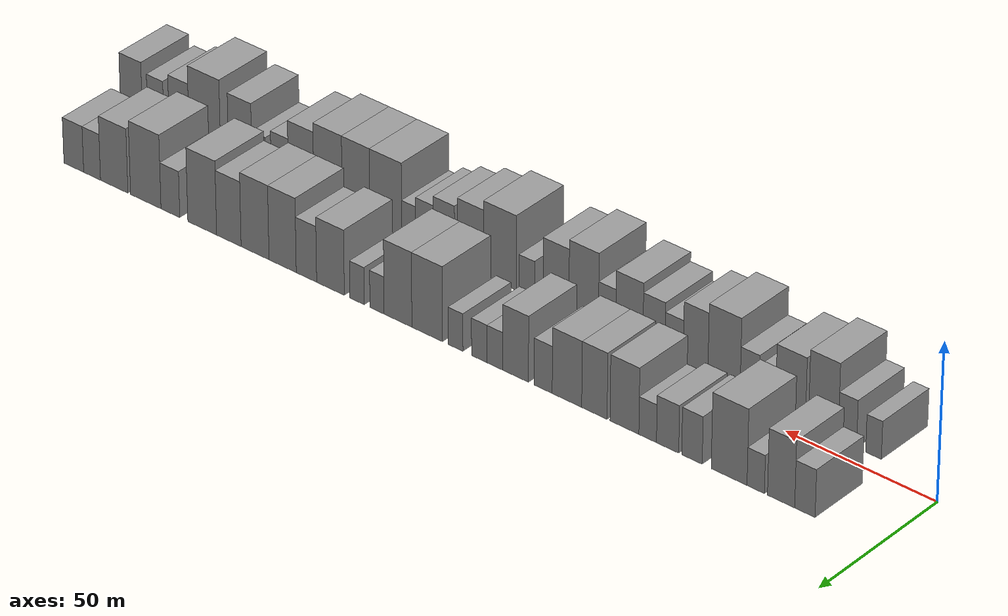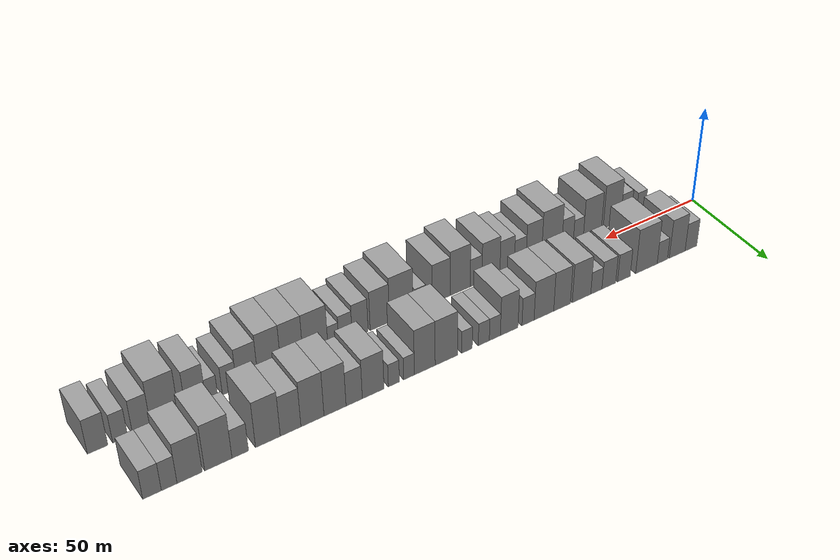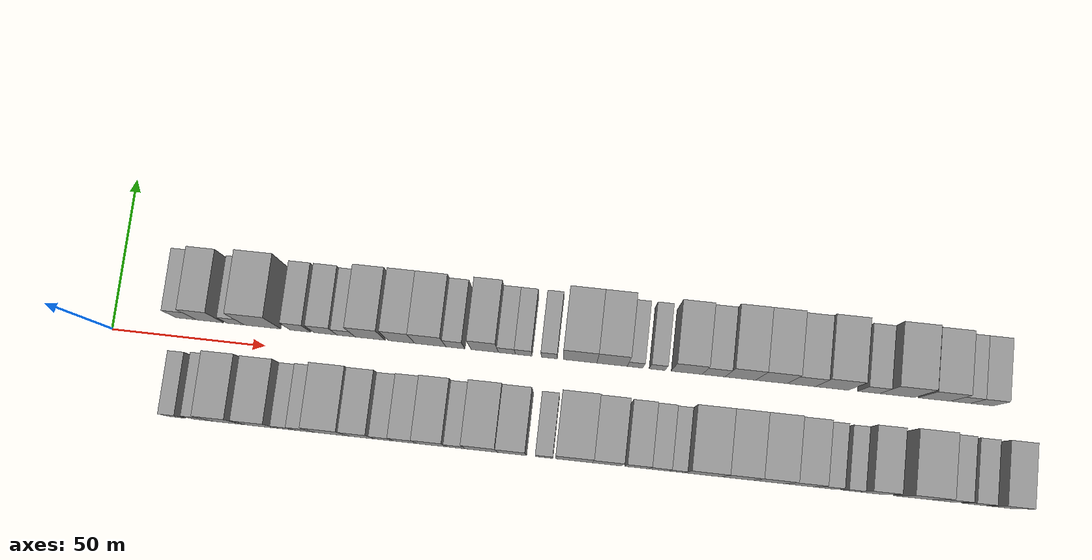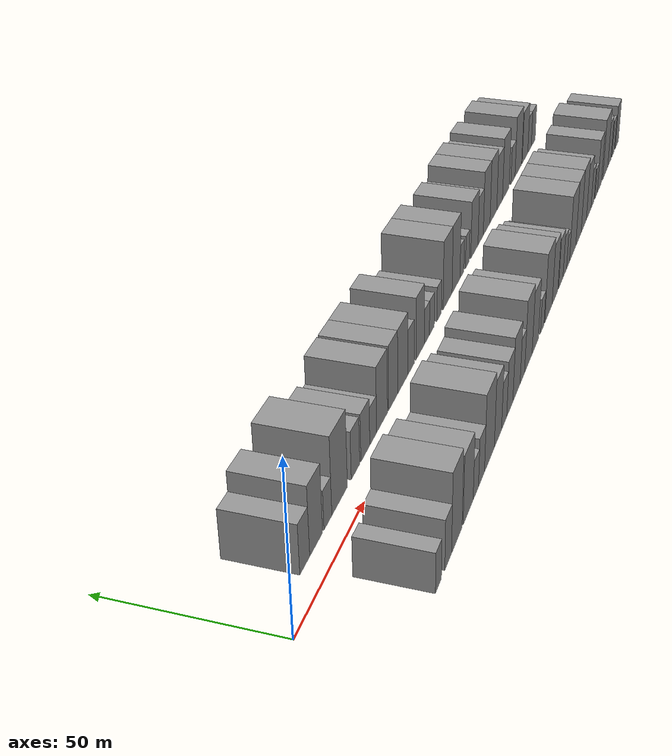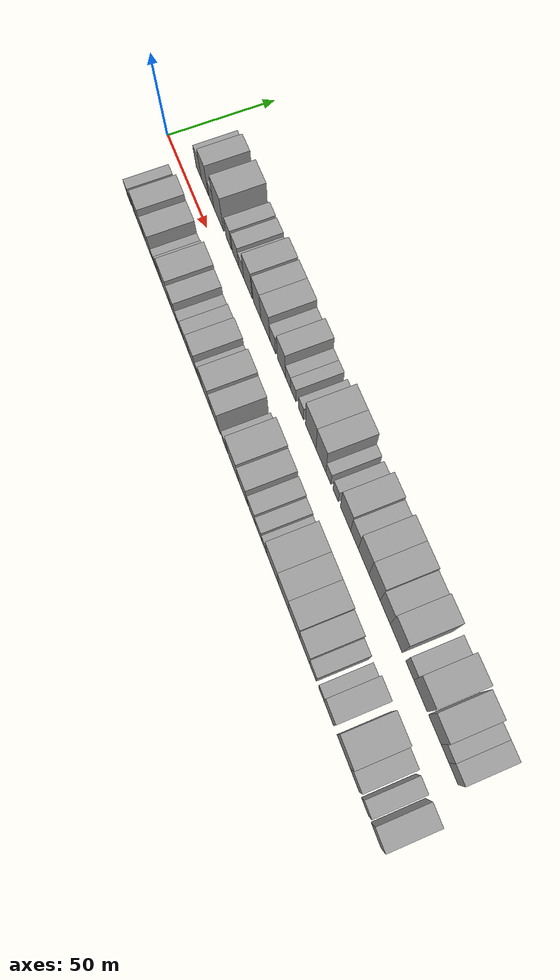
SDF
<sdf version="1.6">
 <world name="default">
  <scene>
   <sky><clouds><speed>12</speed></clouds></sky>
   <ambient>0.4 0.4 0.4 1</ambient>
   <background>0.7 0.7 0.7 1</background>
   <shadows>1</shadows>
  </scene>
  <gravity>0 0 -9.8066</gravity>
  <magnetic_field>6e-06 2.3e-05 -4.2e-05</magnetic_field>
  <physics default="0" name="default_physics" type="ode">
   <ode>
    <solver>
     <type>quick</type>
     <iters>10</iters>
     <sor>1.0</sor>
     <use_dynamic_moi_rescaling>0</use_dynamic_moi_rescaling>
    </solver>
    <constraints>
     <cfm>0</cfm>
     <erp>0.2</erp>
     <contact_max_correcting_vel>100</contact_max_correcting_vel>
     <contact_surface_layer>0.001</contact_surface_layer>
    </constraints>
   </ode>
   <max_step_size>0.004</max_step_size>
   <real_time_factor>1</real_time_factor>
   <real_time_update_rate>250</real_time_update_rate>
  </physics>
  <light name="sun" type="directional">
   <pose>0 0 10 0 0 0</pose>
   <diffuse>0.8 0.8 0.8 1</diffuse>
   <specular>0.2 0.2 0.2 1</specular>
   <attenuation>
    <range>1000</range>
    <constant>0.9</constant>
    <linear>0.01</linear>
    <quadratic>0.001</quadratic>
   </attenuation>
   <direction>-0.5 0.1 -0.9</direction>
  </light>
  <model name="building_1">
   <static>1</static>
   <pose>23.3479 16.0000 0 0.000000 0.000000 1.570796</pose>
   <link name="link">
    <pose>0 0 7.50 0 0 0</pose>
    <collision name="collision"><geometry><box><size>20.0000 6.6958 15.0000</size></box></geometry></collision>
    <visual name="visual">
     <cast_shadows>0</cast_shadows>
     <geometry><box><size>20.0000 6.6958 15.0000</size></box></geometry>
     <material>
      <script>
       <uri>model://grey_wall/materials/scripts</uri>
       <uri>model://grey_wall/materials/textures</uri>
       <name>vrc/grey_wall</name>
      </script>
     </material>
    </visual>
   </link>
  </model>
  <model name="building_2">
   <static>1</static>
   <pose>31.1820 16.0000 0 0.000000 0.000000 1.570796</pose>
   <link name="link">
    <pose>0 0 10.50 0 0 0</pose>
    <collision name="collision"><geometry><box><size>20.0000 8.9723 21.0000</size></box></geometry></collision>
    <visual name="visual">
     <cast_shadows>0</cast_shadows>
     <geometry><box><size>20.0000 8.9723 21.0000</size></box></geometry>
     <material>
      <script>
       <uri>model://grey_wall/materials/scripts</uri>
       <uri>model://grey_wall/materials/textures</uri>
       <name>vrc/grey_wall</name>
      </script>
     </material>
    </visual>
   </link>
  </model>
  <model name="building_3">
   <static>1</static>
   <pose>39.5538 16.0000 0 0.000000 0.000000 1.570796</pose>
   <link name="link">
    <pose>0 0 6.00 0 0 0</pose>
    <collision name="collision"><geometry><box><size>20.0000 5.7713 12.0000</size></box></geometry></collision>
    <visual name="visual">
     <cast_shadows>0</cast_shadows>
     <geometry><box><size>20.0000 5.7713 12.0000</size></box></geometry>
     <material>
      <script>
       <uri>model://grey_wall/materials/scripts</uri>
       <uri>model://grey_wall/materials/textures</uri>
       <name>vrc/grey_wall</name>
      </script>
     </material>
    </visual>
   </link>
  </model>
  <model name="building_4">
   <static>1</static>
   <pose>48.3973 16.0000 0 0.000000 0.000000 1.570796</pose>
   <link name="link">
    <pose>0 0 12.00 0 0 0</pose>
    <collision name="collision"><geometry><box><size>20.0000 11.9158 24.0000</size></box></geometry></collision>
    <visual name="visual">
     <cast_shadows>0</cast_shadows>
     <geometry><box><size>20.0000 11.9158 24.0000</size></box></geometry>
     <material>
      <script>
       <uri>model://grey_wall/materials/scripts</uri>
       <uri>model://grey_wall/materials/textures</uri>
       <name>vrc/grey_wall</name>
      </script>
     </material>
    </visual>
   </link>
  </model>
  <model name="building_5">
   <static>1</static>
   <pose>60.7977 16.0000 0 0.000000 0.000000 1.570796</pose>
   <link name="link">
    <pose>0 0 7.50 0 0 0</pose>
    <collision name="collision"><geometry><box><size>20.0000 6.8849 15.0000</size></box></geometry></collision>
    <visual name="visual">
     <cast_shadows>0</cast_shadows>
     <geometry><box><size>20.0000 6.8849 15.0000</size></box></geometry>
     <material>
      <script>
       <uri>model://grey_wall/materials/scripts</uri>
       <uri>model://grey_wall/materials/textures</uri>
       <name>vrc/grey_wall</name>
      </script>
     </material>
    </visual>
   </link>
  </model>
  <model name="building_6">
   <static>1</static>
   <pose>68.9854 16.0000 0 0.000000 0.000000 1.570796</pose>
   <link name="link">
    <pose>0 0 7.50 0 0 0</pose>
    <collision name="collision"><geometry><box><size>20.0000 7.4906 15.0000</size></box></geometry></collision>
    <visual name="visual">
     <cast_shadows>0</cast_shadows>
     <geometry><box><size>20.0000 7.4906 15.0000</size></box></geometry>
     <material>
      <script>
       <uri>model://grey_wall/materials/scripts</uri>
       <uri>model://grey_wall/materials/textures</uri>
       <name>vrc/grey_wall</name>
      </script>
     </material>
    </visual>
   </link>
  </model>
  <model name="building_7">
   <static>1</static>
   <pose>75.7086 16.0000 0 0.000000 0.000000 1.570796</pose>
   <link name="link">
    <pose>0 0 6.00 0 0 0</pose>
    <collision name="collision"><geometry><box><size>20.0000 5.9558 12.0000</size></box></geometry></collision>
    <visual name="visual">
     <cast_shadows>0</cast_shadows>
     <geometry><box><size>20.0000 5.9558 12.0000</size></box></geometry>
     <material>
      <script>
       <uri>model://grey_wall/materials/scripts</uri>
       <uri>model://grey_wall/materials/textures</uri>
       <name>vrc/grey_wall</name>
      </script>
     </material>
    </visual>
   </link>
  </model>
  <model name="building_8">
   <static>1</static>
   <pose>83.5890 16.0000 0 0.000000 0.000000 1.570796</pose>
   <link name="link">
    <pose>0 0 10.50 0 0 0</pose>
    <collision name="collision"><geometry><box><size>20.0000 9.8051 21.0000</size></box></geometry></collision>
    <visual name="visual">
     <cast_shadows>0</cast_shadows>
     <geometry><box><size>20.0000 9.8051 21.0000</size></box></geometry>
     <material>
      <script>
       <uri>model://grey_wall/materials/scripts</uri>
       <uri>model://grey_wall/materials/textures</uri>
       <name>vrc/grey_wall</name>
      </script>
     </material>
    </visual>
   </link>
  </model>
  <model name="building_9">
   <static>1</static>
   <pose>93.8366 16.0000 0 0.000000 0.000000 1.570796</pose>
   <link name="link">
    <pose>0 0 10.50 0 0 0</pose>
    <collision name="collision"><geometry><box><size>20.0000 8.6900 21.0000</size></box></geometry></collision>
    <visual name="visual">
     <cast_shadows>0</cast_shadows>
     <geometry><box><size>20.0000 8.6900 21.0000</size></box></geometry>
     <material>
      <script>
       <uri>model://grey_wall/materials/scripts</uri>
       <uri>model://grey_wall/materials/textures</uri>
       <name>vrc/grey_wall</name>
      </script>
     </material>
    </visual>
   </link>
  </model>
  <model name="building_10">
   <static>1</static>
   <pose>103.2560 16.0000 0 0.000000 0.000000 1.570796</pose>
   <link name="link">
    <pose>0 0 10.50 0 0 0</pose>
    <collision name="collision"><geometry><box><size>20.0000 10.1488 21.0000</size></box></geometry></collision>
    <visual name="visual">
     <cast_shadows>0</cast_shadows>
     <geometry><box><size>20.0000 10.1488 21.0000</size></box></geometry>
     <material>
      <script>
       <uri>model://grey_wall/materials/scripts</uri>
       <uri>model://grey_wall/materials/textures</uri>
       <name>vrc/grey_wall</name>
      </script>
     </material>
    </visual>
   </link>
  </model>
  <model name="building_11">
   <static>1</static>
   <pose>111.4313 16.0000 0 0.000000 0.000000 1.570796</pose>
   <link name="link">
    <pose>0 0 7.50 0 0 0</pose>
    <collision name="collision"><geometry><box><size>20.0000 6.2018 15.0000</size></box></geometry></collision>
    <visual name="visual">
     <cast_shadows>0</cast_shadows>
     <geometry><box><size>20.0000 6.2018 15.0000</size></box></geometry>
     <material>
      <script>
       <uri>model://grey_wall/materials/scripts</uri>
       <uri>model://grey_wall/materials/textures</uri>
       <name>vrc/grey_wall</name>
      </script>
     </material>
    </visual>
   </link>
  </model>
  <model name="building_12">
   <static>1</static>
   <pose>120.9758 16.0000 0 0.000000 0.000000 1.570796</pose>
   <link name="link">
    <pose>0 0 10.50 0 0 0</pose>
    <collision name="collision"><geometry><box><size>20.0000 8.8872 21.0000</size></box></geometry></collision>
    <visual name="visual">
     <cast_shadows>0</cast_shadows>
     <geometry><box><size>20.0000 8.8872 21.0000</size></box></geometry>
     <material>
      <script>
       <uri>model://grey_wall/materials/scripts</uri>
       <uri>model://grey_wall/materials/textures</uri>
       <name>vrc/grey_wall</name>
      </script>
     </material>
    </visual>
   </link>
  </model>
  <model name="building_13">
   <static>1</static>
   <pose>128.1799 16.0000 0 0.000000 0.000000 1.570796</pose>
   <link name="link">
    <pose>0 0 6.00 0 0 0</pose>
    <collision name="collision"><geometry><box><size>20.0000 5.5210 12.0000</size></box></geometry></collision>
    <visual name="visual">
     <cast_shadows>0</cast_shadows>
     <geometry><box><size>20.0000 5.5210 12.0000</size></box></geometry>
     <material>
      <script>
       <uri>model://grey_wall/materials/scripts</uri>
       <uri>model://grey_wall/materials/textures</uri>
       <name>vrc/grey_wall</name>
      </script>
     </material>
    </visual>
   </link>
  </model>
  <model name="building_14">
   <static>1</static>
   <pose>133.6634 16.0000 0 0.000000 0.000000 1.570796</pose>
   <link name="link">
    <pose>0 0 6.00 0 0 0</pose>
    <collision name="collision"><geometry><box><size>20.0000 5.4461 12.0000</size></box></geometry></collision>
    <visual name="visual">
     <cast_shadows>0</cast_shadows>
     <geometry><box><size>20.0000 5.4461 12.0000</size></box></geometry>
     <material>
      <script>
       <uri>model://grey_wall/materials/scripts</uri>
       <uri>model://grey_wall/materials/textures</uri>
       <name>vrc/grey_wall</name>
      </script>
     </material>
    </visual>
   </link>
  </model>
  <model name="building_15">
   <static>1</static>
   <pose>141.9782 16.0000 0 0.000000 0.000000 1.570796</pose>
   <link name="link">
    <pose>0 0 6.00 0 0 0</pose>
    <collision name="collision"><geometry><box><size>20.0000 5.1835 12.0000</size></box></geometry></collision>
    <visual name="visual">
     <cast_shadows>0</cast_shadows>
     <geometry><box><size>20.0000 5.1835 12.0000</size></box></geometry>
     <material>
      <script>
       <uri>model://grey_wall/materials/scripts</uri>
       <uri>model://grey_wall/materials/textures</uri>
       <name>vrc/grey_wall</name>
      </script>
     </material>
    </visual>
   </link>
  </model>
  <model name="building_16">
   <static>1</static>
   <pose>151.9929 16.0000 0 0.000000 0.000000 1.570796</pose>
   <link name="link">
    <pose>0 0 12.00 0 0 0</pose>
    <collision name="collision"><geometry><box><size>20.0000 10.8459 24.0000</size></box></geometry></collision>
    <visual name="visual">
     <cast_shadows>0</cast_shadows>
     <geometry><box><size>20.0000 10.8459 24.0000</size></box></geometry>
     <material>
      <script>
       <uri>model://grey_wall/materials/scripts</uri>
       <uri>model://grey_wall/materials/textures</uri>
       <name>vrc/grey_wall</name>
      </script>
     </material>
    </visual>
   </link>
  </model>
  <model name="building_17">
   <static>1</static>
   <pose>162.3633 16.0000 0 0.000000 0.000000 1.570796</pose>
   <link name="link">
    <pose>0 0 12.00 0 0 0</pose>
    <collision name="collision"><geometry><box><size>20.0000 9.8948 24.0000</size></box></geometry></collision>
    <visual name="visual">
     <cast_shadows>0</cast_shadows>
     <geometry><box><size>20.0000 9.8948 24.0000</size></box></geometry>
     <material>
      <script>
       <uri>model://grey_wall/materials/scripts</uri>
       <uri>model://grey_wall/materials/textures</uri>
       <name>vrc/grey_wall</name>
      </script>
     </material>
    </visual>
   </link>
  </model>
  <model name="building_18">
   <static>1</static>
   <pose>169.8428 16.0000 0 0.000000 0.000000 1.570796</pose>
   <link name="link">
    <pose>0 0 6.00 0 0 0</pose>
    <collision name="collision"><geometry><box><size>20.0000 5.0642 12.0000</size></box></geometry></collision>
    <visual name="visual">
     <cast_shadows>0</cast_shadows>
     <geometry><box><size>20.0000 5.0642 12.0000</size></box></geometry>
     <material>
      <script>
       <uri>model://grey_wall/materials/scripts</uri>
       <uri>model://grey_wall/materials/textures</uri>
       <name>vrc/grey_wall</name>
      </script>
     </material>
    </visual>
   </link>
  </model>
  <model name="building_19">
   <static>1</static>
   <pose>176.9640 16.0000 0 0.000000 0.000000 1.570796</pose>
   <link name="link">
    <pose>0 0 6.00 0 0 0</pose>
    <collision name="collision"><geometry><box><size>20.0000 5.1782 12.0000</size></box></geometry></collision>
    <visual name="visual">
     <cast_shadows>0</cast_shadows>
     <geometry><box><size>20.0000 5.1782 12.0000</size></box></geometry>
     <material>
      <script>
       <uri>model://grey_wall/materials/scripts</uri>
       <uri>model://grey_wall/materials/textures</uri>
       <name>vrc/grey_wall</name>
      </script>
     </material>
    </visual>
   </link>
  </model>
  <model name="building_20">
   <static>1</static>
   <pose>186.5565 16.0000 0 0.000000 0.000000 1.570796</pose>
   <link name="link">
    <pose>0 0 10.50 0 0 0</pose>
    <collision name="collision"><geometry><box><size>20.0000 10.0067 21.0000</size></box></geometry></collision>
    <visual name="visual">
     <cast_shadows>0</cast_shadows>
     <geometry><box><size>20.0000 10.0067 21.0000</size></box></geometry>
     <material>
      <script>
       <uri>model://grey_wall/materials/scripts</uri>
       <uri>model://grey_wall/materials/textures</uri>
       <name>vrc/grey_wall</name>
      </script>
     </material>
    </visual>
   </link>
  </model>
  <model name="building_21">
   <static>1</static>
   <pose>195.2621 16.0000 0 0.000000 0.000000 1.570796</pose>
   <link name="link">
    <pose>0 0 9.00 0 0 0</pose>
    <collision name="collision"><geometry><box><size>20.0000 7.4045 18.0000</size></box></geometry></collision>
    <visual name="visual">
     <cast_shadows>0</cast_shadows>
     <geometry><box><size>20.0000 7.4045 18.0000</size></box></geometry>
     <material>
      <script>
       <uri>model://grey_wall/materials/scripts</uri>
       <uri>model://grey_wall/materials/textures</uri>
       <name>vrc/grey_wall</name>
      </script>
     </material>
    </visual>
   </link>
  </model>
  <model name="building_22">
   <static>1</static>
   <pose>203.9252 16.0000 0 0.000000 0.000000 1.570796</pose>
   <link name="link">
    <pose>0 0 12.00 0 0 0</pose>
    <collision name="collision"><geometry><box><size>20.0000 9.9217 24.0000</size></box></geometry></collision>
    <visual name="visual">
     <cast_shadows>0</cast_shadows>
     <geometry><box><size>20.0000 9.9217 24.0000</size></box></geometry>
     <material>
      <script>
       <uri>model://grey_wall/materials/scripts</uri>
       <uri>model://grey_wall/materials/textures</uri>
       <name>vrc/grey_wall</name>
      </script>
     </material>
    </visual>
   </link>
  </model>
  <model name="building_23">
   <static>1</static>
   <pose>214.0041 16.0000 0 0.000000 0.000000 1.570796</pose>
   <link name="link">
    <pose>0 0 12.00 0 0 0</pose>
    <collision name="collision"><geometry><box><size>20.0000 10.2360 24.0000</size></box></geometry></collision>
    <visual name="visual">
     <cast_shadows>0</cast_shadows>
     <geometry><box><size>20.0000 10.2360 24.0000</size></box></geometry>
     <material>
      <script>
       <uri>model://grey_wall/materials/scripts</uri>
       <uri>model://grey_wall/materials/textures</uri>
       <name>vrc/grey_wall</name>
      </script>
     </material>
    </visual>
   </link>
  </model>
  <model name="building_24">
   <static>1</static>
   <pose>223.6348 16.0000 0 0.000000 0.000000 1.570796</pose>
   <link name="link">
    <pose>0 0 10.50 0 0 0</pose>
    <collision name="collision"><geometry><box><size>20.0000 9.0255 21.0000</size></box></geometry></collision>
    <visual name="visual">
     <cast_shadows>0</cast_shadows>
     <geometry><box><size>20.0000 9.0255 21.0000</size></box></geometry>
     <material>
      <script>
       <uri>model://grey_wall/materials/scripts</uri>
       <uri>model://grey_wall/materials/textures</uri>
       <name>vrc/grey_wall</name>
      </script>
     </material>
    </visual>
   </link>
  </model>
  <model name="building_25">
   <static>1</static>
   <pose>233.4918 16.0000 0 0.000000 0.000000 1.570796</pose>
   <link name="link">
    <pose>0 0 12.00 0 0 0</pose>
    <collision name="collision"><geometry><box><size>20.0000 10.6884 24.0000</size></box></geometry></collision>
    <visual name="visual">
     <cast_shadows>0</cast_shadows>
     <geometry><box><size>20.0000 10.6884 24.0000</size></box></geometry>
     <material>
      <script>
       <uri>model://grey_wall/materials/scripts</uri>
       <uri>model://grey_wall/materials/textures</uri>
       <name>vrc/grey_wall</name>
      </script>
     </material>
    </visual>
   </link>
  </model>
  <model name="building_26">
   <static>1</static>
   <pose>245.3393 16.0000 0 0.000000 0.000000 1.570796</pose>
   <link name="link">
    <pose>0 0 7.50 0 0 0</pose>
    <collision name="collision"><geometry><box><size>20.0000 7.0066 15.0000</size></box></geometry></collision>
    <visual name="visual">
     <cast_shadows>0</cast_shadows>
     <geometry><box><size>20.0000 7.0066 15.0000</size></box></geometry>
     <material>
      <script>
       <uri>model://grey_wall/materials/scripts</uri>
       <uri>model://grey_wall/materials/textures</uri>
       <name>vrc/grey_wall</name>
      </script>
     </material>
    </visual>
   </link>
  </model>
  <model name="building_27">
   <static>1</static>
   <pose>254.5507 16.0000 0 0.000000 0.000000 1.570796</pose>
   <link name="link">
    <pose>0 0 12.00 0 0 0</pose>
    <collision name="collision"><geometry><box><size>20.0000 11.4161 24.0000</size></box></geometry></collision>
    <visual name="visual">
     <cast_shadows>0</cast_shadows>
     <geometry><box><size>20.0000 11.4161 24.0000</size></box></geometry>
     <material>
      <script>
       <uri>model://grey_wall/materials/scripts</uri>
       <uri>model://grey_wall/materials/textures</uri>
       <name>vrc/grey_wall</name>
      </script>
     </material>
    </visual>
   </link>
  </model>
  <model name="building_28">
   <static>1</static>
   <pose>266.4368 16.0000 0 0.000000 0.000000 1.570796</pose>
   <link name="link">
    <pose>0 0 10.50 0 0 0</pose>
    <collision name="collision"><geometry><box><size>20.0000 10.3563 21.0000</size></box></geometry></collision>
    <visual name="visual">
     <cast_shadows>0</cast_shadows>
     <geometry><box><size>20.0000 10.3563 21.0000</size></box></geometry>
     <material>
      <script>
       <uri>model://grey_wall/materials/scripts</uri>
       <uri>model://grey_wall/materials/textures</uri>
       <name>vrc/grey_wall</name>
      </script>
     </material>
    </visual>
   </link>
  </model>
  <model name="building_29">
   <static>1</static>
   <pose>274.8132 16.0000 0 0.000000 0.000000 1.570796</pose>
   <link name="link">
    <pose>0 0 7.50 0 0 0</pose>
    <collision name="collision"><geometry><box><size>20.0000 6.3964 15.0000</size></box></geometry></collision>
    <visual name="visual">
     <cast_shadows>0</cast_shadows>
     <geometry><box><size>20.0000 6.3964 15.0000</size></box></geometry>
     <material>
      <script>
       <uri>model://grey_wall/materials/scripts</uri>
       <uri>model://grey_wall/materials/textures</uri>
       <name>vrc/grey_wall</name>
      </script>
     </material>
    </visual>
   </link>
  </model>
  <model name="building_30">
   <static>1</static>
   <pose>281.7585 16.0000 0 0.000000 0.000000 1.570796</pose>
   <link name="link">
    <pose>0 0 7.50 0 0 0</pose>
    <collision name="collision"><geometry><box><size>20.0000 7.4942 15.0000</size></box></geometry></collision>
    <visual name="visual">
     <cast_shadows>0</cast_shadows>
     <geometry><box><size>20.0000 7.4942 15.0000</size></box></geometry>
     <material>
      <script>
       <uri>model://grey_wall/materials/scripts</uri>
       <uri>model://grey_wall/materials/textures</uri>
       <name>vrc/grey_wall</name>
      </script>
     </material>
    </visual>
   </link>
  </model>
  <model name="building_31">
   <static>1</static>
   <pose>25.5801 -16.0000 0 0.000000 0.000000 1.570796</pose>
   <link name="link">
    <pose>0 0 6.00 0 0 0</pose>
    <collision name="collision"><geometry><box><size>20.0000 5.1602 12.0000</size></box></geometry></collision>
    <visual name="visual">
     <cast_shadows>0</cast_shadows>
     <geometry><box><size>20.0000 5.1602 12.0000</size></box></geometry>
     <material>
      <script>
       <uri>model://grey_wall/materials/scripts</uri>
       <uri>model://grey_wall/materials/textures</uri>
       <name>vrc/grey_wall</name>
      </script>
     </material>
    </visual>
   </link>
  </model>
  <model name="building_32">
   <static>1</static>
   <pose>34.2256 -16.0000 0 0.000000 0.000000 1.570796</pose>
   <link name="link">
    <pose>0 0 7.50 0 0 0</pose>
    <collision name="collision"><geometry><box><size>20.0000 6.1309 15.0000</size></box></geometry></collision>
    <visual name="visual">
     <cast_shadows>0</cast_shadows>
     <geometry><box><size>20.0000 6.1309 15.0000</size></box></geometry>
     <material>
      <script>
       <uri>model://grey_wall/materials/scripts</uri>
       <uri>model://grey_wall/materials/textures</uri>
       <name>vrc/grey_wall</name>
      </script>
     </material>
    </visual>
   </link>
  </model>
  <model name="building_33">
   <static>1</static>
   <pose>42.2434 -16.0000 0 0.000000 0.000000 1.570796</pose>
   <link name="link">
    <pose>0 0 12.00 0 0 0</pose>
    <collision name="collision"><geometry><box><size>20.0000 9.9047 24.0000</size></box></geometry></collision>
    <visual name="visual">
     <cast_shadows>0</cast_shadows>
     <geometry><box><size>20.0000 9.9047 24.0000</size></box></geometry>
     <material>
      <script>
       <uri>model://grey_wall/materials/scripts</uri>
       <uri>model://grey_wall/materials/textures</uri>
       <name>vrc/grey_wall</name>
      </script>
     </material>
    </visual>
   </link>
  </model>
  <model name="building_34">
   <static>1</static>
   <pose>53.2220 -16.0000 0 0.000000 0.000000 1.570796</pose>
   <link name="link">
    <pose>0 0 10.50 0 0 0</pose>
    <collision name="collision"><geometry><box><size>20.0000 10.0525 21.0000</size></box></geometry></collision>
    <visual name="visual">
     <cast_shadows>0</cast_shadows>
     <geometry><box><size>20.0000 10.0525 21.0000</size></box></geometry>
     <material>
      <script>
       <uri>model://grey_wall/materials/scripts</uri>
       <uri>model://grey_wall/materials/textures</uri>
       <name>vrc/grey_wall</name>
      </script>
     </material>
    </visual>
   </link>
  </model>
  <model name="building_35">
   <static>1</static>
   <pose>61.0224 -16.0000 0 0.000000 0.000000 1.570796</pose>
   <link name="link">
    <pose>0 0 6.00 0 0 0</pose>
    <collision name="collision"><geometry><box><size>20.0000 5.5483 12.0000</size></box></geometry></collision>
    <visual name="visual">
     <cast_shadows>0</cast_shadows>
     <geometry><box><size>20.0000 5.5483 12.0000</size></box></geometry>
     <material>
      <script>
       <uri>model://grey_wall/materials/scripts</uri>
       <uri>model://grey_wall/materials/textures</uri>
       <name>vrc/grey_wall</name>
      </script>
     </material>
    </visual>
   </link>
  </model>
  <model name="building_36">
   <static>1</static>
   <pose>66.9792 -16.0000 0 0.000000 0.000000 1.570796</pose>
   <link name="link">
    <pose>0 0 7.50 0 0 0</pose>
    <collision name="collision"><geometry><box><size>20.0000 6.3654 15.0000</size></box></geometry></collision>
    <visual name="visual">
     <cast_shadows>0</cast_shadows>
     <geometry><box><size>20.0000 6.3654 15.0000</size></box></geometry>
     <material>
      <script>
       <uri>model://grey_wall/materials/scripts</uri>
       <uri>model://grey_wall/materials/textures</uri>
       <name>vrc/grey_wall</name>
      </script>
     </material>
    </visual>
   </link>
  </model>
  <model name="building_37">
   <static>1</static>
   <pose>75.6359 -16.0000 0 0.000000 0.000000 1.570796</pose>
   <link name="link">
    <pose>0 0 12.00 0 0 0</pose>
    <collision name="collision"><geometry><box><size>20.0000 10.9480 24.0000</size></box></geometry></collision>
    <visual name="visual">
     <cast_shadows>0</cast_shadows>
     <geometry><box><size>20.0000 10.9480 24.0000</size></box></geometry>
     <material>
      <script>
       <uri>model://grey_wall/materials/scripts</uri>
       <uri>model://grey_wall/materials/textures</uri>
       <name>vrc/grey_wall</name>
      </script>
     </material>
    </visual>
   </link>
  </model>
  <model name="building_38">
   <static>1</static>
   <pose>85.3301 -16.0000 0 0.000000 0.000000 1.570796</pose>
   <link name="link">
    <pose>0 0 10.50 0 0 0</pose>
    <collision name="collision"><geometry><box><size>20.0000 8.4403 21.0000</size></box></geometry></collision>
    <visual name="visual">
     <cast_shadows>0</cast_shadows>
     <geometry><box><size>20.0000 8.4403 21.0000</size></box></geometry>
     <material>
      <script>
       <uri>model://grey_wall/materials/scripts</uri>
       <uri>model://grey_wall/materials/textures</uri>
       <name>vrc/grey_wall</name>
      </script>
     </material>
    </visual>
   </link>
  </model>
  <model name="building_39">
   <static>1</static>
   <pose>92.6646 -16.0000 0 0.000000 0.000000 1.570796</pose>
   <link name="link">
    <pose>0 0 7.50 0 0 0</pose>
    <collision name="collision"><geometry><box><size>20.0000 6.2287 15.0000</size></box></geometry></collision>
    <visual name="visual">
     <cast_shadows>0</cast_shadows>
     <geometry><box><size>20.0000 6.2287 15.0000</size></box></geometry>
     <material>
      <script>
       <uri>model://grey_wall/materials/scripts</uri>
       <uri>model://grey_wall/materials/textures</uri>
       <name>vrc/grey_wall</name>
      </script>
     </material>
    </visual>
   </link>
  </model>
  <model name="building_40">
   <static>1</static>
   <pose>99.5789 -16.0000 0 0.000000 0.000000 1.570796</pose>
   <link name="link">
    <pose>0 0 9.00 0 0 0</pose>
    <collision name="collision"><geometry><box><size>20.0000 7.6000 18.0000</size></box></geometry></collision>
    <visual name="visual">
     <cast_shadows>0</cast_shadows>
     <geometry><box><size>20.0000 7.6000 18.0000</size></box></geometry>
     <material>
      <script>
       <uri>model://grey_wall/materials/scripts</uri>
       <uri>model://grey_wall/materials/textures</uri>
       <name>vrc/grey_wall</name>
      </script>
     </material>
    </visual>
   </link>
  </model>
  <model name="building_41">
   <static>1</static>
   <pose>108.0654 -16.0000 0 0.000000 0.000000 1.570796</pose>
   <link name="link">
    <pose>0 0 10.50 0 0 0</pose>
    <collision name="collision"><geometry><box><size>20.0000 9.3730 21.0000</size></box></geometry></collision>
    <visual name="visual">
     <cast_shadows>0</cast_shadows>
     <geometry><box><size>20.0000 9.3730 21.0000</size></box></geometry>
     <material>
      <script>
       <uri>model://grey_wall/materials/scripts</uri>
       <uri>model://grey_wall/materials/textures</uri>
       <name>vrc/grey_wall</name>
      </script>
     </material>
    </visual>
   </link>
  </model>
  <model name="building_42">
   <static>1</static>
   <pose>115.7699 -16.0000 0 0.000000 0.000000 1.570796</pose>
   <link name="link">
    <pose>0 0 7.50 0 0 0</pose>
    <collision name="collision"><geometry><box><size>20.0000 6.0360 15.0000</size></box></geometry></collision>
    <visual name="visual">
     <cast_shadows>0</cast_shadows>
     <geometry><box><size>20.0000 6.0360 15.0000</size></box></geometry>
     <material>
      <script>
       <uri>model://grey_wall/materials/scripts</uri>
       <uri>model://grey_wall/materials/textures</uri>
       <name>vrc/grey_wall</name>
      </script>
     </material>
    </visual>
   </link>
  </model>
  <model name="building_43">
   <static>1</static>
   <pose>123.9415 -16.0000 0 0.000000 0.000000 1.570796</pose>
   <link name="link">
    <pose>0 0 12.00 0 0 0</pose>
    <collision name="collision"><geometry><box><size>20.0000 10.3071 24.0000</size></box></geometry></collision>
    <visual name="visual">
     <cast_shadows>0</cast_shadows>
     <geometry><box><size>20.0000 10.3071 24.0000</size></box></geometry>
     <material>
      <script>
       <uri>model://grey_wall/materials/scripts</uri>
       <uri>model://grey_wall/materials/textures</uri>
       <name>vrc/grey_wall</name>
      </script>
     </material>
    </visual>
   </link>
  </model>
  <model name="building_44">
   <static>1</static>
   <pose>133.6444 -16.0000 0 0.000000 0.000000 1.570796</pose>
   <link name="link">
    <pose>0 0 10.50 0 0 0</pose>
    <collision name="collision"><geometry><box><size>20.0000 9.0986 21.0000</size></box></geometry></collision>
    <visual name="visual">
     <cast_shadows>0</cast_shadows>
     <geometry><box><size>20.0000 9.0986 21.0000</size></box></geometry>
     <material>
      <script>
       <uri>model://grey_wall/materials/scripts</uri>
       <uri>model://grey_wall/materials/textures</uri>
       <name>vrc/grey_wall</name>
      </script>
     </material>
    </visual>
   </link>
  </model>
  <model name="building_45">
   <static>1</static>
   <pose>143.9192 -16.0000 0 0.000000 0.000000 1.570796</pose>
   <link name="link">
    <pose>0 0 6.00 0 0 0</pose>
    <collision name="collision"><geometry><box><size>20.0000 5.4511 12.0000</size></box></geometry></collision>
    <visual name="visual">
     <cast_shadows>0</cast_shadows>
     <geometry><box><size>20.0000 5.4511 12.0000</size></box></geometry>
     <material>
      <script>
       <uri>model://grey_wall/materials/scripts</uri>
       <uri>model://grey_wall/materials/textures</uri>
       <name>vrc/grey_wall</name>
      </script>
     </material>
    </visual>
   </link>
  </model>
  <model name="building_46">
   <static>1</static>
   <pose>153.4588 -16.0000 0 0.000000 0.000000 1.570796</pose>
   <link name="link">
    <pose>0 0 12.00 0 0 0</pose>
    <collision name="collision"><geometry><box><size>20.0000 11.6281 24.0000</size></box></geometry></collision>
    <visual name="visual">
     <cast_shadows>0</cast_shadows>
     <geometry><box><size>20.0000 11.6281 24.0000</size></box></geometry>
     <material>
      <script>
       <uri>model://grey_wall/materials/scripts</uri>
       <uri>model://grey_wall/materials/textures</uri>
       <name>vrc/grey_wall</name>
      </script>
     </material>
    </visual>
   </link>
  </model>
  <model name="building_47">
   <static>1</static>
   <pose>163.9425 -16.0000 0 0.000000 0.000000 1.570796</pose>
   <link name="link">
    <pose>0 0 10.50 0 0 0</pose>
    <collision name="collision"><geometry><box><size>20.0000 9.3392 21.0000</size></box></geometry></collision>
    <visual name="visual">
     <cast_shadows>0</cast_shadows>
     <geometry><box><size>20.0000 9.3392 21.0000</size></box></geometry>
     <material>
      <script>
       <uri>model://grey_wall/materials/scripts</uri>
       <uri>model://grey_wall/materials/textures</uri>
       <name>vrc/grey_wall</name>
      </script>
     </material>
    </visual>
   </link>
  </model>
  <model name="building_48">
   <static>1</static>
   <pose>173.4148 -16.0000 0 0.000000 0.000000 1.570796</pose>
   <link name="link">
    <pose>0 0 9.00 0 0 0</pose>
    <collision name="collision"><geometry><box><size>20.0000 7.6054 18.0000</size></box></geometry></collision>
    <visual name="visual">
     <cast_shadows>0</cast_shadows>
     <geometry><box><size>20.0000 7.6054 18.0000</size></box></geometry>
     <material>
      <script>
       <uri>model://grey_wall/materials/scripts</uri>
       <uri>model://grey_wall/materials/textures</uri>
       <name>vrc/grey_wall</name>
      </script>
     </material>
    </visual>
   </link>
  </model>
  <model name="building_49">
   <static>1</static>
   <pose>180.3873 -16.0000 0 0.000000 0.000000 1.570796</pose>
   <link name="link">
    <pose>0 0 7.50 0 0 0</pose>
    <collision name="collision"><geometry><box><size>20.0000 6.3397 15.0000</size></box></geometry></collision>
    <visual name="visual">
     <cast_shadows>0</cast_shadows>
     <geometry><box><size>20.0000 6.3397 15.0000</size></box></geometry>
     <material>
      <script>
       <uri>model://grey_wall/materials/scripts</uri>
       <uri>model://grey_wall/materials/textures</uri>
       <name>vrc/grey_wall</name>
      </script>
     </material>
    </visual>
   </link>
  </model>
  <model name="building_50">
   <static>1</static>
   <pose>186.0961 -16.0000 0 0.000000 0.000000 1.570796</pose>
   <link name="link">
    <pose>0 0 6.00 0 0 0</pose>
    <collision name="collision"><geometry><box><size>20.0000 5.0779 12.0000</size></box></geometry></collision>
    <visual name="visual">
     <cast_shadows>0</cast_shadows>
     <geometry><box><size>20.0000 5.0779 12.0000</size></box></geometry>
     <material>
      <script>
       <uri>model://grey_wall/materials/scripts</uri>
       <uri>model://grey_wall/materials/textures</uri>
       <name>vrc/grey_wall</name>
      </script>
     </material>
    </visual>
   </link>
  </model>
  <model name="building_51">
   <static>1</static>
   <pose>194.4122 -16.0000 0 0.000000 0.000000 1.570796</pose>
   <link name="link">
    <pose>0 0 12.00 0 0 0</pose>
    <collision name="collision"><geometry><box><size>20.0000 11.5542 24.0000</size></box></geometry></collision>
    <visual name="visual">
     <cast_shadows>0</cast_shadows>
     <geometry><box><size>20.0000 11.5542 24.0000</size></box></geometry>
     <material>
      <script>
       <uri>model://grey_wall/materials/scripts</uri>
       <uri>model://grey_wall/materials/textures</uri>
       <name>vrc/grey_wall</name>
      </script>
     </material>
    </visual>
   </link>
  </model>
  <model name="building_52">
   <static>1</static>
   <pose>205.2578 -16.0000 0 0.000000 0.000000 1.570796</pose>
   <link name="link">
    <pose>0 0 12.00 0 0 0</pose>
    <collision name="collision"><geometry><box><size>20.0000 10.1370 24.0000</size></box></geometry></collision>
    <visual name="visual">
     <cast_shadows>0</cast_shadows>
     <geometry><box><size>20.0000 10.1370 24.0000</size></box></geometry>
     <material>
      <script>
       <uri>model://grey_wall/materials/scripts</uri>
       <uri>model://grey_wall/materials/textures</uri>
       <name>vrc/grey_wall</name>
      </script>
     </material>
    </visual>
   </link>
  </model>
  <model name="building_53">
   <static>1</static>
   <pose>215.5491 -16.0000 0 0.000000 0.000000 1.570796</pose>
   <link name="link">
    <pose>0 0 12.00 0 0 0</pose>
    <collision name="collision"><geometry><box><size>20.0000 10.4456 24.0000</size></box></geometry></collision>
    <visual name="visual">
     <cast_shadows>0</cast_shadows>
     <geometry><box><size>20.0000 10.4456 24.0000</size></box></geometry>
     <material>
      <script>
       <uri>model://grey_wall/materials/scripts</uri>
       <uri>model://grey_wall/materials/textures</uri>
       <name>vrc/grey_wall</name>
      </script>
     </material>
    </visual>
   </link>
  </model>
  <model name="building_54">
   <static>1</static>
   <pose>225.4769 -16.0000 0 0.000000 0.000000 1.570796</pose>
   <link name="link">
    <pose>0 0 10.50 0 0 0</pose>
    <collision name="collision"><geometry><box><size>20.0000 9.4102 21.0000</size></box></geometry></collision>
    <visual name="visual">
     <cast_shadows>0</cast_shadows>
     <geometry><box><size>20.0000 9.4102 21.0000</size></box></geometry>
     <material>
      <script>
       <uri>model://grey_wall/materials/scripts</uri>
       <uri>model://grey_wall/materials/textures</uri>
       <name>vrc/grey_wall</name>
      </script>
     </material>
    </visual>
   </link>
  </model>
  <model name="building_55">
   <static>1</static>
   <pose>233.3865 -16.0000 0 0.000000 0.000000 1.570796</pose>
   <link name="link">
    <pose>0 0 7.50 0 0 0</pose>
    <collision name="collision"><geometry><box><size>20.0000 6.4090 15.0000</size></box></geometry></collision>
    <visual name="visual">
     <cast_shadows>0</cast_shadows>
     <geometry><box><size>20.0000 6.4090 15.0000</size></box></geometry>
     <material>
      <script>
       <uri>model://grey_wall/materials/scripts</uri>
       <uri>model://grey_wall/materials/textures</uri>
       <name>vrc/grey_wall</name>
      </script>
     </material>
    </visual>
   </link>
  </model>
  <model name="building_56">
   <static>1</static>
   <pose>241.1770 -16.0000 0 0.000000 0.000000 1.570796</pose>
   <link name="link">
    <pose>0 0 6.00 0 0 0</pose>
    <collision name="collision"><geometry><box><size>20.0000 5.1718 12.0000</size></box></geometry></collision>
    <visual name="visual">
     <cast_shadows>0</cast_shadows>
     <geometry><box><size>20.0000 5.1718 12.0000</size></box></geometry>
     <material>
      <script>
       <uri>model://grey_wall/materials/scripts</uri>
       <uri>model://grey_wall/materials/textures</uri>
       <name>vrc/grey_wall</name>
      </script>
     </material>
    </visual>
   </link>
  </model>
  <model name="building_57">
   <static>1</static>
   <pose>248.1523 -16.0000 0 0.000000 0.000000 1.570796</pose>
   <link name="link">
    <pose>0 0 10.50 0 0 0</pose>
    <collision name="collision"><geometry><box><size>20.0000 8.7788 21.0000</size></box></geometry></collision>
    <visual name="visual">
     <cast_shadows>0</cast_shadows>
     <geometry><box><size>20.0000 8.7788 21.0000</size></box></geometry>
     <material>
      <script>
       <uri>model://grey_wall/materials/scripts</uri>
       <uri>model://grey_wall/materials/textures</uri>
       <name>vrc/grey_wall</name>
      </script>
     </material>
    </visual>
   </link>
  </model>
  <model name="building_58">
   <static>1</static>
   <pose>261.4947 -16.0000 0 0.000000 0.000000 1.570796</pose>
   <link name="link">
    <pose>0 0 12.00 0 0 0</pose>
    <collision name="collision"><geometry><box><size>20.0000 11.9060 24.0000</size></box></geometry></collision>
    <visual name="visual">
     <cast_shadows>0</cast_shadows>
     <geometry><box><size>20.0000 11.9060 24.0000</size></box></geometry>
     <material>
      <script>
       <uri>model://grey_wall/materials/scripts</uri>
       <uri>model://grey_wall/materials/textures</uri>
       <name>vrc/grey_wall</name>
      </script>
     </material>
    </visual>
   </link>
  </model>
  <model name="building_59">
   <static>1</static>
   <pose>271.2302 -16.0000 0 0.000000 0.000000 1.570796</pose>
   <link name="link">
    <pose>0 0 9.00 0 0 0</pose>
    <collision name="collision"><geometry><box><size>20.0000 7.5649 18.0000</size></box></geometry></collision>
    <visual name="visual">
     <cast_shadows>0</cast_shadows>
     <geometry><box><size>20.0000 7.5649 18.0000</size></box></geometry>
     <material>
      <script>
       <uri>model://grey_wall/materials/scripts</uri>
       <uri>model://grey_wall/materials/textures</uri>
       <name>vrc/grey_wall</name>
      </script>
     </material>
    </visual>
   </link>
  </model>
  <model name="building_60">
   <static>1</static>
   <pose>280.1216 -16.0000 0 0.000000 0.000000 1.570796</pose>
   <link name="link">
    <pose>0 0 7.50 0 0 0</pose>
    <collision name="collision"><geometry><box><size>20.0000 6.2180 15.0000</size></box></geometry></collision>
    <visual name="visual">
     <cast_shadows>0</cast_shadows>
     <geometry><box><size>20.0000 6.2180 15.0000</size></box></geometry>
     <material>
      <script>
       <uri>model://grey_wall/materials/scripts</uri>
       <uri>model://grey_wall/materials/textures</uri>
       <name>vrc/grey_wall</name>
      </script>
     </material>
    </visual>
   </link>
  </model>
  <model name="building_61">
   <static>1</static>
   <pose>289.4079 -16.0000 0 0.000000 0.000000 1.570796</pose>
   <link name="link">
    <pose>0 0 9.00 0 0 0</pose>
    <collision name="collision"><geometry><box><size>20.0000 8.3545 18.0000</size></box></geometry></collision>
    <visual name="visual">
     <cast_shadows>0</cast_shadows>
     <geometry><box><size>20.0000 8.3545 18.0000</size></box></geometry>
     <material>
      <script>
       <uri>model://grey_wall/materials/scripts</uri>
       <uri>model://grey_wall/materials/textures</uri>
       <name>vrc/grey_wall</name>
      </script>
     </material>
    </visual>
   </link>
  </model>
 </world>
</sdf>
